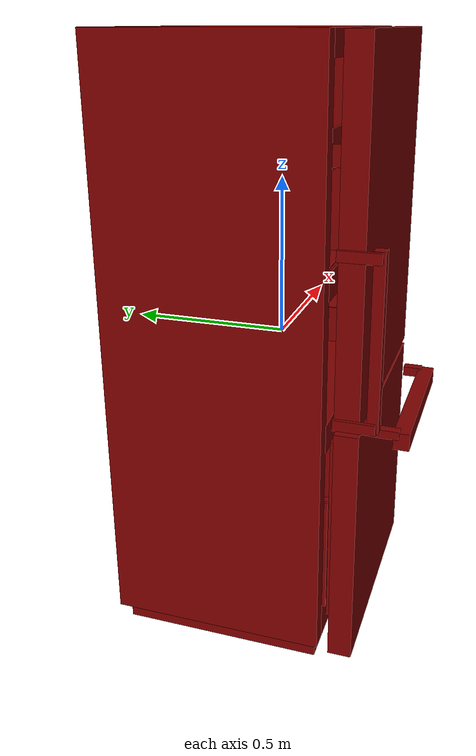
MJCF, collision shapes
<mujoco model="model">
  <compiler angle="radian"/>
  <asset>
    <mesh file="visuals/Body001.obj" name="Body001_vis"/>
    <mesh file="visuals/Body001_Clear.obj" name="Body001_Clear_vis"/>
    <mesh file="visuals/Door001.obj" name="Door001_vis"/>
    <mesh file="visuals/Door001_Clear.obj" name="Door001_Clear_vis"/>
    <mesh file="visuals/Drawer001.obj" name="Drawer001_vis"/>
    <texture file="visuals/T_BC001.png" name="Body001_material" type="2d"/>
    <material name="Body001_material" rgba="1 1 1 1.0" texture="Body001_material" shininess="2" specular="2"/>
    <texture file="visuals/T_BC001.png" name="Body001_Clear_material" type="2d"/>
    <material name="Body001_Clear_material" rgba="1 1 1 0.30000001192092896" texture="Body001_Clear_material" shininess="1" specular="1"/>
    <texture file="visuals/T_BC001.png" name="Door001_material" type="2d"/>
    <material name="Door001_material" rgba="1 1 1 1.0" texture="Door001_material" shininess="2" specular="2"/>
    <texture file="visuals/T_BC001.png" name="Door001_Clear_material" type="2d"/>
    <material name="Door001_Clear_material" rgba="1 1 1 0.30000001192092896" texture="Door001_Clear_material" shininess="1" specular="1"/>
    <texture file="visuals/T_BC001.png" name="Drawer001_material" type="2d"/>
    <material name="Drawer001_material" rgba="1 1 1 1.0" texture="Drawer001_material" shininess="2" specular="2"/>
  </asset>
  <default>
    <default class="visual">
      <geom conaffinity="0" contype="0" group="1" type="mesh"/>
    </default>
    <default class="collision">
      <geom group="0" rgba="0.5 0 0 0.5"/>
    </default>
    <default class="spawn">
      <geom group="0" rgba="1 1 1 0.5" contype="0" conaffinity="0"/>
      <site group="0" rgba="1 1 1 0.5"/>
    </default>
    <default class="region">
      <geom group="1" conaffinity="0" contype="0" rgba="0 1 0 0"/>
    </default>
  </default>
  <worldbody>
    <body>
      <body name="object">
        <geom mesh="Body001_vis" type="mesh" solimp="0.998 0.998 0.001" solref="0.001 1" density="100" friction="0.95 0.3 0.1" class="visual" material="Body001_material"/>
        <geom class="collision" type="box" pos="-0.378119 0.096427 0.024701" size="0.028060730546712875 0.3370806574821472 0.9047858715057373" quat="1.0 0.0 0.0 0.0"/>
        <geom class="collision" type="box" pos="0.390193 0.096427 0.024701" size="0.027647867798805237 0.3370806574821472 0.9047855138778687" quat="1.0 0.0 0.0 0.0"/>
        <geom class="collision" type="box" pos="0.006243 0.096427 0.894176" size="0.3562981188297272 0.3370806574821472 0.035293594002723694" quat="1.0 0.0 0.0 0.0"/>
        <geom class="collision" type="box" pos="0.006243 0.096427 -0.187574" size="0.35629820823669434 0.3370806574821472 0.0450526587665081" quat="1.0 0.0 0.0 0.0"/>
        <geom class="collision" type="box" pos="0.010580 0.087020 -0.869857" size="0.39513638615608215 0.31481149792671204 0.060143597424030304" quat="1.0 0.0 0.0 0.0"/>
        <geom class="collision" type="box" pos="0.012199 0.399247 0.024701" size="0.3699829578399658 0.06026953458786011 0.9047840237617493" quat="1.0 0.0 0.0 0.0"/>
        <geom class="collision" type="box" pos="0.003715 0.010302 0.840033" size="0.20680196583271027 0.07203670591115952 0.019142724573612213" quat="1.0 0.0 0.0 0.0"/>
        <body name="Body001_Clear">
          <geom mesh="Body001_Clear_vis" type="mesh" solimp="0.998 0.998 0.001" solref="0.001 1" density="100" friction="0.95 0.3 0.1" class="visual" material="Body001_Clear_material"/>
          <geom class="collision" type="box" pos="0.006283 0.107394 0.503255" size="0.34597280621528625 0.22730039060115814 0.003964090719819069" quat="1.0 0.0 0.0 0.0"/>
          <geom class="collision" type="box" pos="0.006283 0.107394 0.180605" size="0.34597286581993103 0.22730039060115814 0.003964089322835207" quat="1.0 0.0 0.0 0.0"/>
        </body>
        <body name="Door001">
          <joint axis="0.0 0.0 1.0" pos="0.348095 -0.312253 0.388432" limited="true" name="Door001_joint" range="0.0 1.5707963267948966" type="hinge" damping="1" frictionloss="1" armature=".01" stiffness="0.05"/>
          <geom mesh="Door001_vis" type="mesh" solimp="0.998 0.998 0.001" solref="0.001 1" density="100" friction="0.95 0.3 0.1" class="visual" material="Door001_material"/>
          <geom class="collision" type="box" pos="-0.388059 -0.383998 0.141762" size="0.017807811498641968 0.016224142163991928 0.2570488452911377" quat="1.0 0.0 0.0 0.0"/>
          <geom class="collision" type="box" pos="-0.019376 -0.311058 0.404561" size="0.3811870217323303 0.0361582487821579 0.5239527225494385" quat="1.0 0.0 0.0 0.0"/>
          <geom class="collision" type="box" pos="-0.412241 -0.333475 -0.100083" size="0.005623071454465389 0.06038874387741089 0.015767445787787437" quat="1.0 0.0 0.0 0.0"/>
          <geom class="collision" type="box" pos="-0.412241 -0.333475 0.380936" size="0.005623071454465389 0.06038874387741089 0.015767453238368034" quat="1.0 0.0 0.0 0.0"/>
          <body name="Door001_Clear">
            <geom mesh="Door001_Clear_vis" type="mesh" solimp="0.998 0.998 0.001" solref="0.001 1" density="100" friction="0.95 0.3 0.1" class="visual" material="Door001_Clear_material"/>
            <geom class="collision" type="box" pos="0.008600 -0.144792 0.612893" size="0.2844829857349396 0.0019457800080999732 0.03054332546889782" quat="1.0 0.0 0.0 0.0"/>
            <geom class="collision" type="box" pos="0.008600 -0.216679 0.583669" size="0.2844829857349396 0.07155344635248184 0.0014210047665983438" quat="1.0 0.0 0.0 0.0"/>
            <geom class="collision" type="box" pos="-0.278011 -0.216679 0.612668" size="0.0017949444008991122 0.07155442237854004 0.030537515878677368" quat="1.0 0.0 0.0 0.0"/>
            <geom class="collision" type="box" pos="0.292832 -0.216679 0.612668" size="0.001794932410120964 0.07155442237854004 0.030537521466612816" quat="1.0 0.0 0.0 0.0"/>
            <geom class="collision" type="box" pos="0.008600 -0.144792 0.143906" size="0.2844829857349396 0.0019457817543298006 0.05010266974568367" quat="1.0 0.0 0.0 0.0"/>
            <geom class="collision" type="box" pos="0.008600 -0.216679 0.095122" size="0.2844829857349396 0.0715535432100296 0.0014210047665983438" quat="1.0 0.0 0.0 0.0"/>
            <geom class="collision" type="box" pos="-0.278011 -0.216679 0.143680" size="0.0017949462635442615 0.07155442237854004 0.05009666085243225" quat="1.0 0.0 0.0 0.0"/>
            <geom class="collision" type="box" pos="0.292832 -0.216679 0.143680" size="0.0017949307803064585 0.07155442237854004 0.050096672028303146" quat="1.0 0.0 0.0 0.0"/>
          </body>
        </body>
        <body name="Drawer001">
          <joint axis="0.0 -1.0 0.0" pos="-0.000086 -0.059524 -0.515847" limited="true" name="Drawer001_joint" range="0.0 0.4" type="slide" damping="1" frictionloss="1" armature=".01" stiffness="0.05"/>
          <geom mesh="Drawer001_vis" type="mesh" solimp="0.998 0.998 0.001" solref="0.001 1" density="100" friction="0.95 0.3 0.1" class="visual" material="Drawer001_material"/>
          <geom class="collision" type="box" pos="-0.019376 -0.311058 -0.515810" size="0.3811870217323303 0.03615816682577133 0.3775607645511627" quat="1.0 0.0 0.0 0.0"/>
          <geom class="collision" type="box" pos="0.020428 -0.441468 -0.215758" size="0.26047101616859436 0.02474580705165863 0.027213525027036667" quat="1.0 0.0 0.0 0.0"/>
          <geom class="collision" type="box" pos="0.002783 -0.263114 -0.499326" size="0.34182918071746826 0.011310730129480362 0.30125892162323" quat="1.0 0.0 0.0 0.0"/>
          <geom class="collision" type="box" pos="-0.301146 0.009809 -0.611564" size="0.004962955601513386 0.25078120827674866 0.18902094662189484" quat="1.0 0.0 0.0 0.0"/>
          <geom class="collision" type="box" pos="0.310103 0.006976 -0.611564" size="0.004962956998497248 0.2536139190196991 0.18902094662189484" quat="1.0 0.0 0.0 0.0"/>
          <geom class="collision" type="box" pos="0.000444 0.264945 -0.611564" size="0.3057416081428528 0.005501630716025829 0.18902094662189484" quat="1.0 0.0 0.0 0.0"/>
          <geom class="collision" type="box" pos="0.005358 0.029505 -0.796936" size="0.3057419955730438 0.23010395467281342 0.004017821047455072" quat="1.0 0.0 0.0 0.0"/>
          <geom class="collision" type="box" pos="-0.229199 -0.388482 -0.196902" size="0.014942779205739498 0.04655171185731888 0.013089067302644253" quat="1.0 0.0 0.0 0.0"/>
          <geom class="collision" type="box" pos="0.261942 -0.397015 -0.198492" size="0.01589740812778473 0.029414836317300797 0.015767445787787437" quat="1.0 0.0 0.0 0.0"/>
        </body>
        <geom class="region" name="reg_main" type="box" pos="0.005815500000000001 0.037719 -0.00021600000000004949" size="0.41199549999999996 0.421798 0.9297839999999999"/>
      </body>
    </body>
  </worldbody>
  <actuator>
    <motor name="Door001_joint_actuator" joint="Door001_joint" gear="50"/>
    <motor name="Drawer001_joint_actuator" joint="Drawer001_joint" gear="50"/>
  </actuator>
</mujoco>
